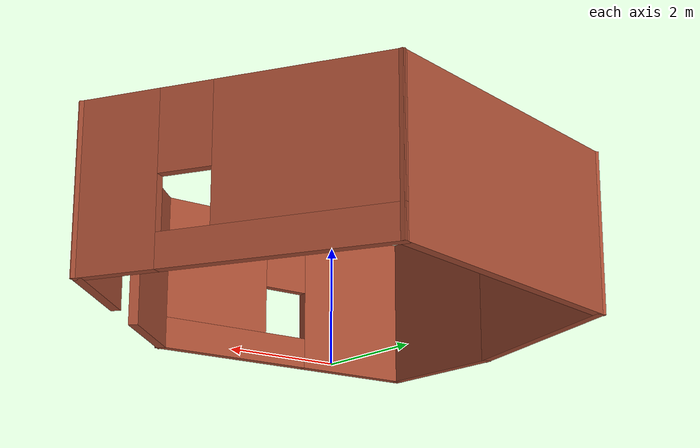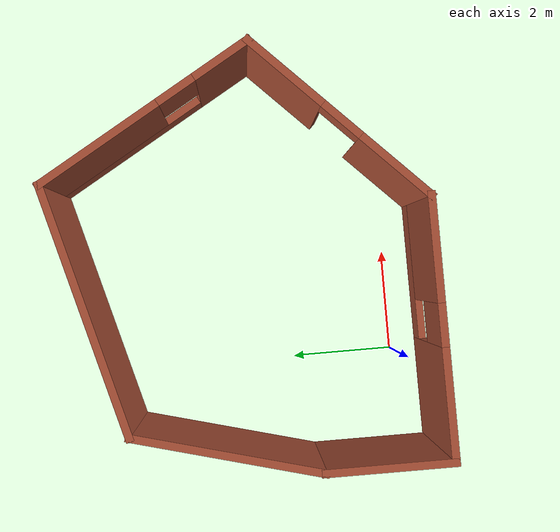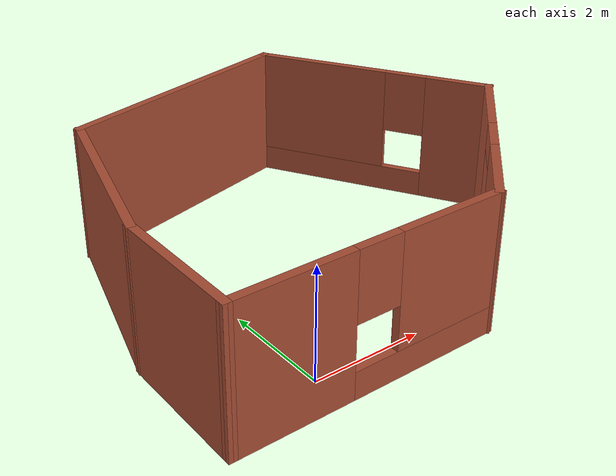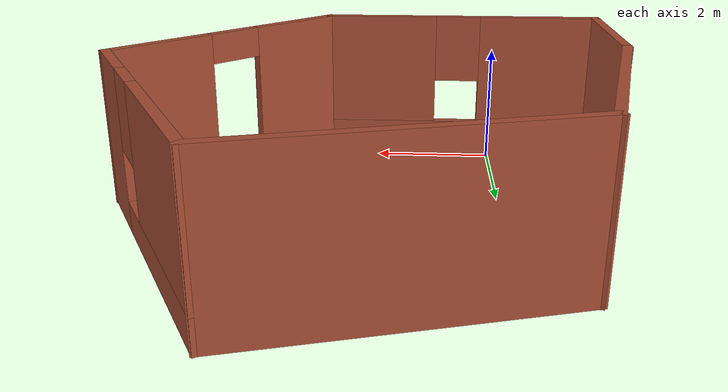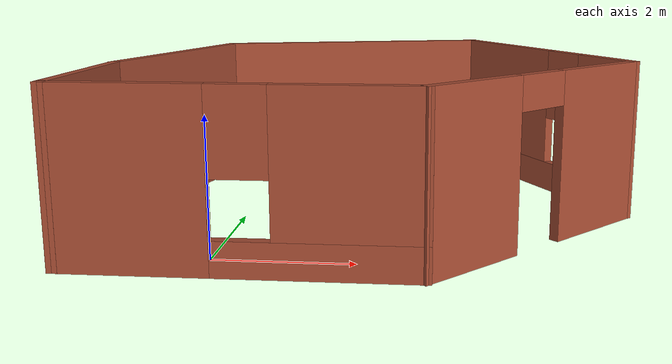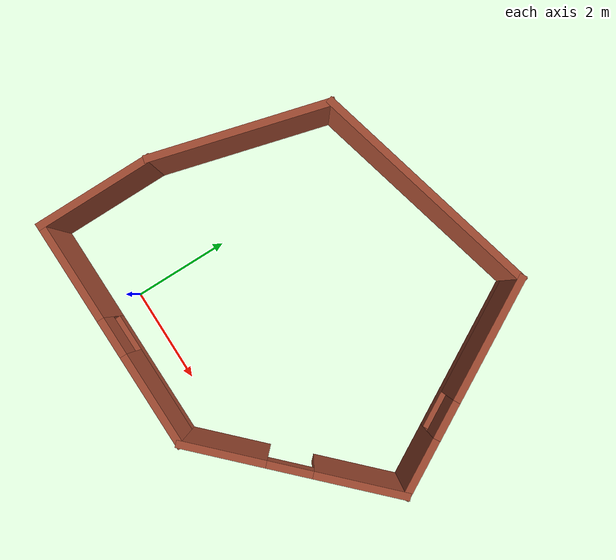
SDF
<?xml version='1.0'?>
<sdf version='1.7'>
  <model name='my_word'>
    <pose>2.065 2.9423 0 0 -0 0</pose>
    <link name='Wall_2'>
      <pose>2.41318 -1.99005 0 0 -0 0.785398</pose>
      <visual name='Wall_2_Visual_0'>
        <pose>-1.3827 0 1.25 0 -0 0</pose>
        <geometry>
          <box>
            <size>1.7346 0.15 2.5</size>
          </box>
        </geometry>
        <material>
          <script>
            <uri>file://media/materials/scripts/gazebo.material</uri>
            <name>Gazebo/Bricks</name>
          </script>
          <ambient>1 1 1 1</ambient>
        </material>
        <meta>
          <layer>0</layer>
        </meta>
      </visual>
      <collision name='Wall_2_Collision_0'>
        <geometry>
          <box>
            <size>1.7346 0.15 2.5</size>
          </box>
        </geometry>
        <pose>-1.3827 0 1.25 0 -0 0</pose>
      </collision>
      <visual name='Wall_2_Visual_1'>
        <pose>1.3173 0 1.25 0 -0 0</pose>
        <geometry>
          <box>
            <size>1.8654 0.15 2.5</size>
          </box>
        </geometry>
        <material>
          <script>
            <uri>file://media/materials/scripts/gazebo.material</uri>
            <name>Gazebo/Bricks</name>
          </script>
          <ambient>1 1 1 1</ambient>
        </material>
        <meta>
          <layer>0</layer>
        </meta>
      </visual>
      <collision name='Wall_2_Collision_1'>
        <geometry>
          <box>
            <size>1.8654 0.15 2.5</size>
          </box>
        </geometry>
        <pose>1.3173 0 1.25 0 -0 0</pose>
      </collision>
      <visual name='Wall_2_Visual_2'>
        <pose>-0.065399 0 2.25 0 -0 0</pose>
        <geometry>
          <box>
            <size>0.9 0.15 0.5</size>
          </box>
        </geometry>
        <material>
          <script>
            <uri>file://media/materials/scripts/gazebo.material</uri>
            <name>Gazebo/Bricks</name>
          </script>
          <ambient>1 1 1 1</ambient>
        </material>
        <meta>
          <layer>0</layer>
        </meta>
      </visual>
      <collision name='Wall_2_Collision_2'>
        <geometry>
          <box>
            <size>0.9 0.15 0.5</size>
          </box>
        </geometry>
        <pose>-0.065399 0 2.25 0 -0 0</pose>
      </collision>
    </link>
    <link name='Wall_3'>
      <pose>2.80114 1.53976 0 0 -0 2.0944</pose>
      <visual name='Wall_3_Visual_0'>
        <pose>-1.74072 0 1.25 0 -0 0</pose>
        <geometry>
          <box>
            <size>1.26856 0.15 2.5</size>
          </box>
        </geometry>
        <material>
          <script>
            <uri>file://media/materials/scripts/gazebo.material</uri>
            <name>Gazebo/Bricks</name>
          </script>
          <ambient>1 1 1 1</ambient>
        </material>
        <meta>
          <layer>0</layer>
        </meta>
      </visual>
      <collision name='Wall_3_Collision_0'>
        <geometry>
          <box>
            <size>1.26856 0.15 2.5</size>
          </box>
        </geometry>
        <pose>-1.74072 0 1.25 0 -0 0</pose>
      </collision>
      <visual name='Wall_3_Visual_1'>
        <pose>0.634282 0 0.25 0 -0 0</pose>
        <geometry>
          <box>
            <size>3.48144 0.15 0.5</size>
          </box>
        </geometry>
        <material>
          <script>
            <uri>file://media/materials/scripts/gazebo.material</uri>
            <name>Gazebo/Bricks</name>
          </script>
          <ambient>1 1 1 1</ambient>
        </material>
        <meta>
          <layer>0</layer>
        </meta>
      </visual>
      <collision name='Wall_3_Collision_1'>
        <geometry>
          <box>
            <size>3.48144 0.15 0.5</size>
          </box>
        </geometry>
        <pose>0.634282 0 0.25 0 -0 0</pose>
      </collision>
      <visual name='Wall_3_Visual_2'>
        <pose>1.03428 0 1.5 0 -0 0</pose>
        <geometry>
          <box>
            <size>2.68144 0.15 2</size>
          </box>
        </geometry>
        <material>
          <script>
            <uri>file://media/materials/scripts/gazebo.material</uri>
            <name>Gazebo/Bricks</name>
          </script>
          <ambient>1 1 1 1</ambient>
        </material>
        <meta>
          <layer>0</layer>
        </meta>
      </visual>
      <collision name='Wall_3_Collision_2'>
        <geometry>
          <box>
            <size>2.68144 0.15 2</size>
          </box>
        </geometry>
        <pose>1.03428 0 1.5 0 -0 0</pose>
      </collision>
      <visual name='Wall_3_Visual_3'>
        <pose>-0.706437 0 1.9 0 -0 0</pose>
        <geometry>
          <box>
            <size>0.8 0.15 1.2</size>
          </box>
        </geometry>
        <material>
          <script>
            <uri>file://media/materials/scripts/gazebo.material</uri>
            <name>Gazebo/Bricks</name>
          </script>
          <ambient>1 1 1 1</ambient>
        </material>
        <meta>
          <layer>0</layer>
        </meta>
      </visual>
      <collision name='Wall_3_Collision_3'>
        <geometry>
          <box>
            <size>0.8 0.15 1.2</size>
          </box>
        </geometry>
        <pose>-0.706437 0 1.9 0 -0 0</pose>
      </collision>
    </link>
    <link name='Wall_4'>
      <collision name='Wall_4_Collision'>
        <geometry>
          <box>
            <size>5 0.15 2.5</size>
          </box>
        </geometry>
        <pose>0 0 1.25 0 -0 0</pose>
      </collision>
      <visual name='Wall_4_Visual'>
        <pose>0 0 1.25 0 -0 0</pose>
        <geometry>
          <box>
            <size>5 0.15 2.5</size>
          </box>
        </geometry>
        <material>
          <script>
            <uri>file://media/materials/scripts/gazebo.material</uri>
            <name>Gazebo/Bricks</name>
          </script>
          <ambient>1 1 1 1</ambient>
        </material>
        <meta>
          <layer>0</layer>
        </meta>
      </visual>
      <pose>-0.691231 2.90399 0 0 -0 -2.87979</pose>
    </link>
    <link name='Wall_5'>
      <collision name='Wall_5_Collision'>
        <geometry>
          <box>
            <size>3.75 0.15 2.5</size>
          </box>
        </geometry>
        <pose>0 0 1.25 0 -0 0</pose>
      </collision>
      <visual name='Wall_5_Visual'>
        <pose>0 0 1.25 0 -0 0</pose>
        <geometry>
          <box>
            <size>3.75 0.15 2.5</size>
          </box>
        </geometry>
        <material>
          <script>
            <uri>file://media/materials/scripts/gazebo.material</uri>
            <name>Gazebo/Bricks</name>
          </script>
          <ambient>1 1 1 1</ambient>
        </material>
        <meta>
          <layer>0</layer>
        </meta>
      </visual>
      <pose>-3.49947 0.537684 0 0 -0 -1.8326</pose>
    </link>
    <link name='Wall_6'>
      <collision name='Wall_6_Collision'>
        <geometry>
          <box>
            <size>2.5 0.15 2.5</size>
          </box>
        </geometry>
        <pose>0 0 1.25 0 -0 0</pose>
      </collision>
      <visual name='Wall_6_Visual'>
        <pose>0 0 1.25 0 -0 0</pose>
        <geometry>
          <box>
            <size>2.5 0.15 2.5</size>
          </box>
        </geometry>
        <material>
          <script>
            <uri>file://media/materials/scripts/gazebo.material</uri>
            <name>Gazebo/Bricks</name>
          </script>
          <ambient>1 1 1 1</ambient>
        </material>
        <meta>
          <layer>0</layer>
        </meta>
      </visual>
      <pose>-3.96535 -2.37598 0 0 -0 -1.5708</pose>
    </link>
    <link name='Wall_7'>
      <pose>-1.54506 -3.5395 0 0 -0 0.004746</pose>
      <visual name='Wall_7_Visual_0'>
        <pose>-1.41635 0 1.25 0 -0 0</pose>
        <geometry>
          <box>
            <size>2.15794 0.15 2.5</size>
          </box>
        </geometry>
        <material>
          <script>
            <uri>file://media/materials/scripts/gazebo.material</uri>
            <name>Gazebo/Bricks</name>
          </script>
          <ambient>1 1 1 1</ambient>
        </material>
        <meta>
          <layer>0</layer>
        </meta>
      </visual>
      <collision name='Wall_7_Collision_0'>
        <geometry>
          <box>
            <size>2.15794 0.15 2.5</size>
          </box>
        </geometry>
        <pose>-1.41635 0 1.25 0 -0 0</pose>
      </collision>
      <visual name='Wall_7_Visual_1'>
        <pose>1.07897 0 0.25 0 -0 0</pose>
        <geometry>
          <box>
            <size>2.83269 0.15 0.5</size>
          </box>
        </geometry>
        <material>
          <script>
            <uri>file://media/materials/scripts/gazebo.material</uri>
            <name>Gazebo/Bricks</name>
          </script>
          <ambient>1 1 1 1</ambient>
        </material>
        <meta>
          <layer>0</layer>
        </meta>
      </visual>
      <collision name='Wall_7_Collision_1'>
        <geometry>
          <box>
            <size>2.83269 0.15 0.5</size>
          </box>
        </geometry>
        <pose>1.07897 0 0.25 0 -0 0</pose>
      </collision>
      <visual name='Wall_7_Visual_2'>
        <pose>1.47897 0 1.5 0 -0 0</pose>
        <geometry>
          <box>
            <size>2.03269 0.15 2</size>
          </box>
        </geometry>
        <material>
          <script>
            <uri>file://media/materials/scripts/gazebo.material</uri>
            <name>Gazebo/Bricks</name>
          </script>
          <ambient>1 1 1 1</ambient>
        </material>
        <meta>
          <layer>0</layer>
        </meta>
      </visual>
      <collision name='Wall_7_Collision_2'>
        <geometry>
          <box>
            <size>2.03269 0.15 2</size>
          </box>
        </geometry>
        <pose>1.47897 0 1.5 0 -0 0</pose>
      </collision>
      <visual name='Wall_7_Visual_3'>
        <pose>0.062621 0 1.9 0 -0 0</pose>
        <geometry>
          <box>
            <size>0.8 0.15 1.2</size>
          </box>
        </geometry>
        <material>
          <script>
            <uri>file://media/materials/scripts/gazebo.material</uri>
            <name>Gazebo/Bricks</name>
          </script>
          <ambient>1 1 1 1</ambient>
        </material>
        <meta>
          <layer>0</layer>
        </meta>
      </visual>
      <collision name='Wall_7_Collision_3'>
        <geometry>
          <box>
            <size>0.8 0.15 1.2</size>
          </box>
        </geometry>
        <pose>0.062621 0 1.9 0 -0 0</pose>
      </collision>
    </link>
    <static>1</static>
  </model>
</sdf>
